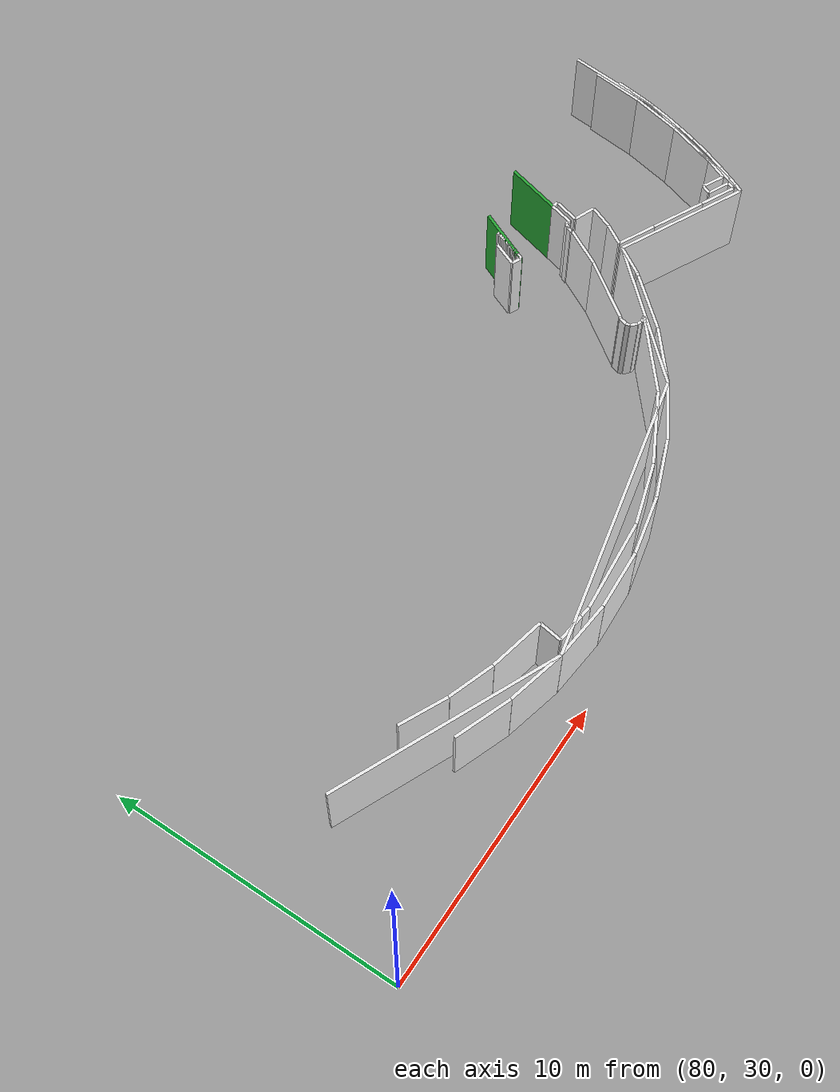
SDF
<sdf version="1.6">
 <world name="default">
  <model name="wall_101.2_40.3_1.5">
   <static>true</static>
   <pose>101.22500000003492 40.33999999985099 1.5 0 0 1.14888780329325</pose>
   <link name="link">
    <visual name="visual">
     <geometry><box><size>1.9291708061423898 0.1 3</size></box></geometry>
     <material>
      <script><uri>file://media/materials/scripts/gazebo.material</uri><name>Gazebo/Green</name></script>
     </material>
    </visual>
    <collision name="collision"><geometry><box><size>1.9291708061423898 0.1 3</size></box></geometry></collision>
   </link>
  </model>
  <model name="wall_103.3_40.6_1.5">
   <static>true</static>
   <pose>103.3299999999872 40.59000000008382 1.5 0 0 -1.823690391929414</pose>
   <link name="link">
    <visual name="visual">
     <geometry><box><size>1.8384776308918926 0.1 3</size></box></geometry>
     <material>
      <script><uri>file://media/materials/scripts/gazebo.material</uri><name>Gazebo/Green</name></script>
     </material>
    </visual>
    <collision name="collision"><geometry><box><size>1.8384776308918926 0.1 3</size></box></geometry></collision>
   </link>
  </model>
  <model name="wall_100.9_39.7_1.5">
   <static>true</static>
   <pose>100.88500000000931 39.670000000158325 1.5 0 0 1.1071487177940904</pose>
   <link name="link">
    <visual name="visual">
     <geometry><box><size>0.022360679795822902 0.1 3</size></box></geometry>
     <material>
      <script><uri>file://media/materials/scripts/gazebo.material</uri><name>Gazebo/White</name></script>
     </material>
    </visual>
    <collision name="collision">
     <geometry><box><size>0.022360679795822902 0.1 3</size></box></geometry>
    </collision>
   </link>
  </model>
  <model name="wall_100.9_39.8_1.5">
   <static>true</static>
   <pose>100.92999999999302 39.77999999979511 1.5 0 0 1.1071487177940904</pose>
   <link name="link">
    <visual name="visual">
     <geometry><box><size>0.044721359591645804 0.1 3</size></box></geometry>
     <material>
      <script><uri>file://media/materials/scripts/gazebo.material</uri><name>Gazebo/White</name></script>
     </material>
    </visual>
    <collision name="collision">
     <geometry><box><size>0.044721359591645804 0.1 3</size></box></geometry>
    </collision>
   </link>
  </model>
  <model name="wall_101.0_39.9_1.5">
   <static>true</static>
   <pose>100.96499999999651 39.86999999987893 1.5 0 0 1.1071487185701927</pose>
   <link name="link">
    <visual name="visual">
     <geometry><box><size>0.06708203936143745 0.1 3</size></box></geometry>
     <material>
      <script><uri>file://media/materials/scripts/gazebo.material</uri><name>Gazebo/White</name></script>
     </material>
    </visual>
    <collision name="collision"><geometry><box><size>0.06708203936143745 0.1 3</size></box></geometry></collision>
   </link>
  </model>
  <model name="wall_101.0_40.0_1.5">
   <static>true</static>
   <pose>101.00500000000466 39.96999999997206 1.5 0 0 1.1071487177940904</pose>
   <link name="link">
    <visual name="visual">
     <geometry><box><size>0.0670820393874687 0.1 3</size></box></geometry>
     <material>
      <script><uri>file://media/materials/scripts/gazebo.material</uri><name>Gazebo/White</name></script>
     </material>
    </visual>
    <collision name="collision"><geometry><box><size>0.0670820393874687 0.1 3</size></box></geometry></collision>
   </link>
  </model>
  <model name="wall_101.0_40.1_1.5">
   <static>true</static>
   <pose>101.04000000000815 40.06499999994412 1.5 0 0 0.9827937281725927</pose>
   <link name="link">
    <visual name="visual">
     <geometry><box><size>0.03605551294965821 0.1 3</size></box></geometry>
     <material>
      <script><uri>file://media/materials/scripts/gazebo.material</uri><name>Gazebo/White</name></script>
     </material>
    </visual>
    <collision name="collision"><geometry><box><size>0.03605551294965821 0.1 3</size></box></geometry></collision>
   </link>
  </model>
  <model name="wall_101.1_40.1_1.5">
   <static>true</static>
   <pose>101.05999999999767 40.10499999998137 1.5 0 0 1.1902899480768032</pose>
   <link name="link">
    <visual name="visual">
     <geometry><box><size>0.05385164790532047 0.1 3</size></box></geometry>
     <material>
      <script><uri>file://media/materials/scripts/gazebo.material</uri><name>Gazebo/White</name></script>
     </material>
    </visual>
    <collision name="collision"><geometry><box><size>0.05385164790532047 0.1 3</size></box></geometry></collision>
   </link>
  </model>
  <model name="wall_101.1_40.2_1.5">
   <static>true</static>
   <pose>101.0800000000163 40.16500000003725 1.5 0 0 1.2924966686683914</pose>
   <link name="link">
    <visual name="visual">
     <geometry><box><size>0.07280109918447873 0.1 3</size></box></geometry>
     <material>
      <script><uri>file://media/materials/scripts/gazebo.material</uri><name>Gazebo/White</name></script>
     </material>
    </visual>
    <collision name="collision"><geometry><box><size>0.07280109918447873 0.1 3</size></box></geometry></collision>
   </link>
  </model>
  <model name="wall_101.1_40.3_1.5">
   <static>true</static>
   <pose>101.13500000000931 40.31499999994412 1.5 0 0 1.1659045417141096</pose>
   <link name="link">
    <visual name="visual">
     <geometry><box><size>0.07615773134357162 0.1 3</size></box></geometry>
     <material>
      <script><uri>file://media/materials/scripts/gazebo.material</uri><name>Gazebo/White</name></script>
     </material>
    </visual>
    <collision name="collision"><geometry><box><size>0.07615773134357162 0.1 3</size></box></geometry></collision>
   </link>
  </model>
  <model name="wall_101.2_40.4_1.5">
   <static>true</static>
   <pose>101.16000000000349 40.390000000130385 1.5 0 0 1.3258176643528286</pose>
   <link name="link">
    <visual name="visual">
     <geometry><box><size>0.08246211257503461 0.1 3</size></box></geometry>
     <material>
      <script><uri>file://media/materials/scripts/gazebo.material</uri><name>Gazebo/White</name></script>
     </material>
    </visual>
    <collision name="collision"><geometry><box><size>0.08246211257503461 0.1 3</size></box></geometry></collision>
   </link>
  </model>
  <model name="wall_101.2_40.5_1.5">
   <static>true</static>
   <pose>101.18499999999767 40.46999999997206 1.5 0 0 1.2120256546106478</pose>
   <link name="link">
    <visual name="visual">
     <geometry><box><size>0.0854400370967353 0.1 3</size></box></geometry>
     <material>
      <script><uri>file://media/materials/scripts/gazebo.material</uri><name>Gazebo/White</name></script>
     </material>
    </visual>
    <collision name="collision"><geometry><box><size>0.0854400370967353 0.1 3</size></box></geometry></collision>
   </link>
  </model>
  <model name="wall_101.2_40.6_1.5">
   <static>true</static>
   <pose>101.22000000000116 40.59000000008382 1.5 0 0 1.2490457732713693</pose>
   <link name="link">
    <visual name="visual">
     <geometry><box><size>0.06324555324386272 0.1 3</size></box></geometry>
     <material>
      <script><uri>file://media/materials/scripts/gazebo.material</uri><name>Gazebo/White</name></script>
     </material>
    </visual>
    <collision name="collision"><geometry><box><size>0.06324555324386272 0.1 3</size></box></geometry></collision>
   </link>
  </model>
  <model name="wall_103.0_39.3_1.5">
   <static>true</static>
   <pose>103.0 39.31000000005588 1.5 0 0 -1.821799013301479</pose>
   <link name="link">
    <visual name="visual">
     <geometry><box><size>0.8052328858089288 0.1 3</size></box></geometry>
     <material>
      <script><uri>file://media/materials/scripts/gazebo.material</uri><name>Gazebo/White</name></script>
     </material>
    </visual>
    <collision name="collision"><geometry><box><size>0.8052328858089288 0.1 3</size></box></geometry></collision>
   </link>
  </model>
  <model name="wall_102.8_38.9_1.5">
   <static>true</static>
   <pose>102.8300000000163 38.949999999953434 1.5 0 0 2.736700867003636</pose>
   <link name="link">
    <visual name="visual">
     <geometry><box><size>0.15231546215213043 0.1 3</size></box></geometry>
     <material>
      <script><uri>file://media/materials/scripts/gazebo.material</uri><name>Gazebo/White</name></script>
     </material>
    </visual>
    <collision name="collision"><geometry><box><size>0.15231546215213043 0.1 3</size></box></geometry></collision>
   </link>
  </model>
  <model name="wall_102.7_38.9_1.5">
   <static>true</static>
   <pose>102.72500000000582 38.90999999991618 1.5 0 0 -2.0344439354630874</pose>
   <link name="link">
    <visual name="visual">
     <geometry><box><size>0.15652475854472905 0.1 3</size></box></geometry>
     <material>
      <script><uri>file://media/materials/scripts/gazebo.material</uri><name>Gazebo/White</name></script>
     </material>
    </visual>
    <collision name="collision"><geometry><box><size>0.15652475854472905 0.1 3</size></box></geometry></collision>
   </link>
  </model>
  <model name="wall_102.7_38.8_1.5">
   <static>true</static>
   <pose>102.67999999999302 38.84499999997206 1.5 0 0 2.677945035275761</pose>
   <link name="link">
    <visual name="visual">
     <geometry><box><size>0.022360679899947934 0.1 3</size></box></geometry>
     <material>
      <script><uri>file://media/materials/scripts/gazebo.material</uri><name>Gazebo/White</name></script>
     </material>
    </visual>
    <collision name="collision">
     <geometry><box><size>0.022360679899947934 0.1 3</size></box></geometry>
    </collision>
   </link>
  </model>
  <model name="wall_102.6_38.8_1.5">
   <static>true</static>
   <pose>102.63000000000466 38.76000000000931 1.5 0 0 -1.9890206558340546</pose>
   <link name="link">
    <visual name="visual">
     <geometry><box><size>0.19697715617209063 0.1 3</size></box></geometry>
     <material>
      <script><uri>file://media/materials/scripts/gazebo.material</uri><name>Gazebo/White</name></script>
     </material>
    </visual>
    <collision name="collision"><geometry><box><size>0.19697715617209063 0.1 3</size></box></geometry></collision>
   </link>
  </model>
  <model name="wall_100.9_39.6_1.5">
   <static>true</static>
   <pose>100.86999999999534 39.550000000046566 1.5 0 0 1.1525719977557387</pose>
   <link name="link">
    <visual name="visual">
     <geometry><box><size>0.19697715617209063 0.1 3</size></box></geometry>
     <material>
      <script><uri>file://media/materials/scripts/gazebo.material</uri><name>Gazebo/White</name></script>
     </material>
    </visual>
    <collision name="collision"><geometry><box><size>0.19697715617209063 0.1 3</size></box></geometry></collision>
   </link>
  </model>
  <model name="wall_100.7_40.0_1.5">
   <static>true</static>
   <pose>100.68000000002212 39.98999999999069 1.5 0 0 -1.9693187723551735</pose>
   <link name="link">
    <visual name="visual">
     <geometry><box><size>0.824621125349411 0.1 3</size></box></geometry>
     <material>
      <script><uri>file://media/materials/scripts/gazebo.material</uri><name>Gazebo/White</name></script>
     </material>
    </visual>
    <collision name="collision"><geometry><box><size>0.824621125349411 0.1 3</size></box></geometry></collision>
   </link>
  </model>
  <model name="wall_100.7_39.5_1.5">
   <static>true</static>
   <pose>100.67500000001746 39.53499999991618 1.5 0 0 -0.4506613258401467</pose>
   <link name="link">
    <visual name="visual">
     <geometry><box><size>0.34438350711179067 0.1 3</size></box></geometry>
     <material>
      <script><uri>file://media/materials/scripts/gazebo.material</uri><name>Gazebo/White</name></script>
     </material>
    </visual>
    <collision name="collision"><geometry><box><size>0.34438350711179067 0.1 3</size></box></geometry></collision>
   </link>
  </model>
  <model name="wall_102.6_38.7_1.5">
   <static>true</static>
   <pose>102.60500000001048 38.65999999991618 1.5 0 0 -0.5880026044430701</pose>
   <link name="link">
    <visual name="visual">
     <geometry><box><size>0.03605551273978751 0.1 3</size></box></geometry>
     <material>
      <script><uri>file://media/materials/scripts/gazebo.material</uri><name>Gazebo/White</name></script>
     </material>
    </visual>
    <collision name="collision"><geometry><box><size>0.03605551273978751 0.1 3</size></box></geometry></collision>
   </link>
  </model>
  <model name="wall_102.3_38.1_1.5">
   <static>true</static>
   <pose>102.30499999999302 38.05499999993481 1.5 0 0 -2.0576955586286396</pose>
   <link name="link">
    <visual name="visual">
     <geometry><box><size>1.3464768842697874 0.1 3</size></box></geometry>
     <material>
      <script><uri>file://media/materials/scripts/gazebo.material</uri><name>Gazebo/White</name></script>
     </material>
    </visual>
    <collision name="collision"><geometry><box><size>1.3464768842697874 0.1 3</size></box></geometry></collision>
   </link>
  </model>
  <model name="wall_101.4_36.6_1.5">
   <static>true</static>
   <pose>101.36499999999069 36.574999999953434 1.5 0 0 -2.1856810573733596</pose>
   <link name="link">
    <visual name="visual">
     <geometry><box><size>2.166887168282174 0.1 3</size></box></geometry>
     <material>
      <script><uri>file://media/materials/scripts/gazebo.material</uri><name>Gazebo/White</name></script>
     </material>
    </visual>
    <collision name="collision"><geometry><box><size>2.166887168282174 0.1 3</size></box></geometry></collision>
   </link>
  </model>
  <model name="wall_100.7_35.7_1.5">
   <static>true</static>
   <pose>100.71499999999651 35.66500000003725 1.5 0 0 -2.3561944919385747</pose>
   <link name="link">
    <visual name="visual">
     <geometry><box><size>0.07071067797871404 0.1 3</size></box></geometry>
     <material>
      <script><uri>file://media/materials/scripts/gazebo.material</uri><name>Gazebo/White</name></script>
     </material>
    </visual>
    <collision name="collision"><geometry><box><size>0.07071067797871404 0.1 3</size></box></geometry></collision>
   </link>
  </model>
  <model name="wall_100.7_35.5_1.5">
   <static>true</static>
   <pose>100.65499999999884 35.52000000001863 1.5 0 0 -1.854590435779707</pose>
   <link name="link">
    <visual name="visual">
     <geometry><box><size>0.25000000021653246 0.1 3</size></box></geometry>
     <material>
      <script><uri>file://media/materials/scripts/gazebo.material</uri><name>Gazebo/White</name></script>
     </material>
    </visual>
    <collision name="collision"><geometry><box><size>0.25000000021653246 0.1 3</size></box></geometry></collision>
   </link>
  </model>
  <model name="wall_100.6_35.3_1.5">
   <static>true</static>
   <pose>100.63500000000931 35.33499999996275 1.5 0 0 -1.3439974783485995</pose>
   <link name="link">
    <visual name="visual">
     <geometry><box><size>0.13341664053864913 0.1 3</size></box></geometry>
     <material>
      <script><uri>file://media/materials/scripts/gazebo.material</uri><name>Gazebo/White</name></script>
     </material>
    </visual>
    <collision name="collision"><geometry><box><size>0.13341664053864913 0.1 3</size></box></geometry></collision>
   </link>
  </model>
  <model name="wall_100.7_35.2_1.5">
   <static>true</static>
   <pose>100.73500000001513 35.17999999993481 1.5 0 0 -0.8139618217489675</pose>
   <link name="link">
    <visual name="visual">
     <geometry><box><size>0.24758836817348331 0.1 3</size></box></geometry>
     <material>
      <script><uri>file://media/materials/scripts/gazebo.material</uri><name>Gazebo/White</name></script>
     </material>
    </visual>
    <collision name="collision"><geometry><box><size>0.24758836817348331 0.1 3</size></box></geometry></collision>
   </link>
  </model>
  <model name="wall_100.9_35.1_1.5">
   <static>true</static>
   <pose>100.88500000000931 35.06499999994412 1.5 0 0 -0.36717383255805336</pose>
   <link name="link">
    <visual name="visual">
     <geometry><box><size>0.13928388270932235 0.1 3</size></box></geometry>
     <material>
      <script><uri>file://media/materials/scripts/gazebo.material</uri><name>Gazebo/White</name></script>
     </material>
    </visual>
    <collision name="collision"><geometry><box><size>0.13928388270932235 0.1 3</size></box></geometry></collision>
   </link>
  </model>
  <model name="wall_101.0_35.0_1.5">
   <static>true</static>
   <pose>101.00500000000466 35.04000000003725 1.5 0 0 0.0</pose>
   <link name="link">
    <visual name="visual">
     <geometry><box><size>0.10999999998603016 0.1 3</size></box></geometry>
     <material>
      <script><uri>file://media/materials/scripts/gazebo.material</uri><name>Gazebo/White</name></script>
     </material>
    </visual>
    <collision name="collision"><geometry><box><size>0.10999999998603016 0.1 3</size></box></geometry></collision>
   </link>
  </model>
  <model name="wall_101.1_35.1_1.5">
   <static>true</static>
   <pose>101.11499999999069 35.05499999993481 1.5 0 0 0.2662520474494707</pose>
   <link name="link">
    <visual name="visual">
     <geometry><box><size>0.11401754244252582 0.1 3</size></box></geometry>
     <material>
      <script><uri>file://media/materials/scripts/gazebo.material</uri><name>Gazebo/White</name></script>
     </material>
    </visual>
    <collision name="collision"><geometry><box><size>0.11401754244252582 0.1 3</size></box></geometry></collision>
   </link>
  </model>
  <model name="wall_100.1_34.2_1.5">
   <static>true</static>
   <pose>100.125 34.17999999993481 1.5 0 0 -2.4361271769906225</pose>
   <link name="link">
    <visual name="visual">
     <geometry><box><size>2.7452686570050546 0.1 3</size></box></geometry>
     <material>
      <script><uri>file://media/materials/scripts/gazebo.material</uri><name>Gazebo/White</name></script>
     </material>
    </visual>
    <collision name="collision"><geometry><box><size>2.7452686570050546 0.1 3</size></box></geometry></collision>
   </link>
  </model>
  <model name="wall_98.0_32.7_1.5">
   <static>true</static>
   <pose>97.96499999999651 32.699999999953434 1.5 0 0 -2.654899479832602</pose>
   <link name="link">
    <visual name="visual">
     <geometry><box><size>2.522954617224051 0.1 3</size></box></geometry>
     <material>
      <script><uri>file://media/materials/scripts/gazebo.material</uri><name>Gazebo/White</name></script>
     </material>
    </visual>
    <collision name="collision"><geometry><box><size>2.522954617224051 0.1 3</size></box></geometry></collision>
   </link>
  </model>
  <model name="wall_95.8_31.8_1.5">
   <static>true</static>
   <pose>95.83499999999185 31.794999999925494 1.5 0 0 -2.8406724192753643</pose>
   <link name="link">
    <visual name="visual">
     <geometry><box><size>2.125511703034424 0.1 3</size></box></geometry>
     <material>
      <script><uri>file://media/materials/scripts/gazebo.material</uri><name>Gazebo/White</name></script>
     </material>
    </visual>
    <collision name="collision"><geometry><box><size>2.125511703034424 0.1 3</size></box></geometry></collision>
   </link>
  </model>
  <model name="wall_93.3_31.3_1.5">
   <static>true</static>
   <pose>93.27499999999418 31.34499999997206 1.5 0 0 -3.0544353790302465</pose>
   <link name="link">
    <visual name="visual">
     <geometry><box><size>3.101773686162215 0.1 3</size></box></geometry>
     <material>
      <script><uri>file://media/materials/scripts/gazebo.material</uri><name>Gazebo/White</name></script>
     </material>
    </visual>
    <collision name="collision"><geometry><box><size>3.101773686162215 0.1 3</size></box></geometry></collision>
   </link>
  </model>
  <model name="wall_91.5_31.2_1.5">
   <static>true</static>
   <pose>91.5449999999837 31.229999999981374 1.5 0 0 3.0339027826561074</pose>
   <link name="link">
    <visual name="visual">
     <geometry><box><size>0.3721558813179423 0.1 3</size></box></geometry>
     <material>
      <script><uri>file://media/materials/scripts/gazebo.material</uri><name>Gazebo/White</name></script>
     </material>
    </visual>
    <collision name="collision"><geometry><box><size>0.3721558813179423 0.1 3</size></box></geometry></collision>
   </link>
  </model>
  <model name="wall_90.9_31.3_1.5">
   <static>true</static>
   <pose>90.86999999999534 31.300000000046566 1.5 0 0 3.039903801730743</pose>
   <link name="link">
    <visual name="visual">
     <geometry><box><size>0.985088828472904 0.1 3</size></box></geometry>
     <material>
      <script><uri>file://media/materials/scripts/gazebo.material</uri><name>Gazebo/White</name></script>
     </material>
    </visual>
    <collision name="collision"><geometry><box><size>0.985088828472904 0.1 3</size></box></geometry></collision>
   </link>
  </model>
  <model name="wall_90.4_31.7_1.5">
   <static>true</static>
   <pose>90.44000000000233 31.739999999990687 1.5 0 0 1.4181469983659853</pose>
   <link name="link">
    <visual name="visual">
     <geometry><box><size>0.7891767860747378 0.1 3</size></box></geometry>
     <material>
      <script><uri>file://media/materials/scripts/gazebo.material</uri><name>Gazebo/White</name></script>
     </material>
    </visual>
    <collision name="collision"><geometry><box><size>0.7891767860747378 0.1 3</size></box></geometry></collision>
   </link>
  </model>
  <model name="wall_89.6_32.3_1.5">
   <static>true</static>
   <pose>89.56500000000233 32.33499999996275 1.5 0 0 2.9257565612511374</pose>
   <link name="link">
    <visual name="visual">
     <geometry><box><size>1.914418971935029 0.1 3</size></box></geometry>
     <material>
      <script><uri>file://media/materials/scripts/gazebo.material</uri><name>Gazebo/White</name></script>
     </material>
    </visual>
    <collision name="collision"><geometry><box><size>1.914418971935029 0.1 3</size></box></geometry></collision>
   </link>
  </model>
  <model name="wall_87.9_32.8_1.5">
   <static>true</static>
   <pose>87.86499999999069 32.80499999993481 1.5 0 0 2.8081238857159727</pose>
   <link name="link">
    <visual name="visual">
     <geometry><box><size>1.6191973319729474 0.1 3</size></box></geometry>
     <material>
      <script><uri>file://media/materials/scripts/gazebo.material</uri><name>Gazebo/White</name></script>
     </material>
    </visual>
    <collision name="collision"><geometry><box><size>1.6191973319729474 0.1 3</size></box></geometry></collision>
   </link>
  </model>
  <model name="wall_86.3_33.4_1.5">
   <static>true</static>
   <pose>86.3299999999872 33.43499999982305 1.5 0 0 2.6989393348950688</pose>
   <link name="link">
    <visual name="visual">
     <geometry><box><size>1.704259369904788 0.1 3</size></box></geometry>
     <material>
      <script><uri>file://media/materials/scripts/gazebo.material</uri><name>Gazebo/White</name></script>
     </material>
    </visual>
    <collision name="collision"><geometry><box><size>1.704259369904788 0.1 3</size></box></geometry></collision>
   </link>
  </model>
  <model name="wall_108.4_40.5_1.5">
   <static>true</static>
   <pose>108.39999999999418 40.48999999999069 1.5 0 0 -1.6657480331131271</pose>
   <link name="link">
    <visual name="visual">
     <geometry><box><size>1.6876018489427735 0.1 3</size></box></geometry>
     <material>
      <script><uri>file://media/materials/scripts/gazebo.material</uri><name>Gazebo/White</name></script>
     </material>
    </visual>
    <collision name="collision"><geometry><box><size>1.6876018489427735 0.1 3</size></box></geometry></collision>
   </link>
  </model>
  <model name="wall_108.2_38.8_1.5">
   <static>true</static>
   <pose>108.15499999999884 38.829999999841675 1.5 0 0 -1.7693642190444387</pose>
   <link name="link">
    <visual name="visual">
     <geometry><box><size>1.672871782426382 0.1 3</size></box></geometry>
     <material>
      <script><uri>file://media/materials/scripts/gazebo.material</uri><name>Gazebo/White</name></script>
     </material>
    </visual>
    <collision name="collision"><geometry><box><size>1.672871782426382 0.1 3</size></box></geometry></collision>
   </link>
  </model>
  <model name="wall_107.7_37.2_1.5">
   <static>true</static>
   <pose>107.74499999999534 37.204999999841675 1.5 0 0 -1.8662371639558804</pose>
   <link name="link">
    <visual name="visual">
     <geometry><box><size>1.6829141390965354 0.1 3</size></box></geometry>
     <material>
      <script><uri>file://media/materials/scripts/gazebo.material</uri><name>Gazebo/White</name></script>
     </material>
    </visual>
    <collision name="collision"><geometry><box><size>1.6829141390965354 0.1 3</size></box></geometry></collision>
   </link>
  </model>
  <model name="wall_107.4_36.1_1.5">
   <static>true</static>
   <pose>107.35000000000582 36.05499999993481 1.5 0 0 -1.980923667351811</pose>
   <link name="link">
    <visual name="visual">
     <geometry><box><size>0.7523961721831801 0.1 3</size></box></geometry>
     <material>
      <script><uri>file://media/materials/scripts/gazebo.material</uri><name>Gazebo/White</name></script>
     </material>
    </visual>
    <collision name="collision"><geometry><box><size>0.7523961721831801 0.1 3</size></box></geometry></collision>
   </link>
  </model>
  <model name="wall_106.9_35.9_1.5">
   <static>true</static>
   <pose>106.86000000001513 35.87999999988824 1.5 0 0 2.677945044760186</pose>
   <link name="link">
    <visual name="visual">
     <geometry><box><size>0.760263112277041 0.1 3</size></box></geometry>
     <material>
      <script><uri>file://media/materials/scripts/gazebo.material</uri><name>Gazebo/White</name></script>
     </material>
    </visual>
    <collision name="collision"><geometry><box><size>0.760263112277041 0.1 3</size></box></geometry></collision>
   </link>
  </model>
  <model name="wall_106.5_35.9_1.5">
   <static>true</static>
   <pose>106.46000000002095 35.90999999991618 1.5 0 0 -1.9756881133308752</pose>
   <link name="link">
    <visual name="visual">
     <geometry><box><size>0.3046309240443975 0.1 3</size></box></geometry>
     <material>
      <script><uri>file://media/materials/scripts/gazebo.material</uri><name>Gazebo/White</name></script>
     </material>
    </visual>
    <collision name="collision"><geometry><box><size>0.3046309240443975 0.1 3</size></box></geometry></collision>
   </link>
  </model>
  <model name="wall_106.7_35.6_1.5">
   <static>true</static>
   <pose>106.74500000002445 35.60000000009313 1.5 0 0 -0.4578337208438593</pose>
   <link name="link">
    <visual name="visual">
     <geometry><box><size>0.769220384481512 0.1 3</size></box></geometry>
     <material>
      <script><uri>file://media/materials/scripts/gazebo.material</uri><name>Gazebo/White</name></script>
     </material>
    </visual>
    <collision name="collision"><geometry><box><size>0.769220384481512 0.1 3</size></box></geometry></collision>
   </link>
  </model>
  <model name="wall_107.0_35.3_1.5">
   <static>true</static>
   <pose>107.04000000000815 35.31500000017695 1.5 0 0 -1.9809236674937056</pose>
   <link name="link">
    <visual name="visual">
     <geometry><box><size>0.25079872407653264 0.1 3</size></box></geometry>
     <material>
      <script><uri>file://media/materials/scripts/gazebo.material</uri><name>Gazebo/White</name></script>
     </material>
    </visual>
    <collision name="collision"><geometry><box><size>0.25079872407653264 0.1 3</size></box></geometry></collision>
   </link>
  </model>
  <model name="wall_106.4_35.5_1.5">
   <static>true</static>
   <pose>106.44999999998254 35.47000000020489 1.5 0 0 2.6779450445674287</pose>
   <link name="link">
    <visual name="visual">
     <geometry><box><size>1.207476707881124 0.1 3</size></box></geometry>
     <material>
      <script><uri>file://media/materials/scripts/gazebo.material</uri><name>Gazebo/White</name></script>
     </material>
    </visual>
    <collision name="collision"><geometry><box><size>1.207476707881124 0.1 3</size></box></geometry></collision>
   </link>
  </model>
  <model name="wall_105.1_36.2_1.5">
   <static>true</static>
   <pose>105.08499999999185 36.15500000002794 1.5 0 0 2.675523741995435</pose>
   <link name="link">
    <visual name="visual">
     <geometry><box><size>1.8469975634080924 0.1 3</size></box></geometry>
     <material>
      <script><uri>file://media/materials/scripts/gazebo.material</uri><name>Gazebo/White</name></script>
     </material>
    </visual>
    <collision name="collision"><geometry><box><size>1.8469975634080924 0.1 3</size></box></geometry></collision>
   </link>
  </model>
  <model name="wall_103.7_36.9_1.5">
   <static>true</static>
   <pose>103.6700000000128 36.86499999999069 1.5 0 0 2.6779450443719415</pose>
   <link name="link">
    <visual name="visual">
     <geometry><box><size>1.3192801068602384 0.1 3</size></box></geometry>
     <material>
      <script><uri>file://media/materials/scripts/gazebo.material</uri><name>Gazebo/White</name></script>
     </material>
    </visual>
    <collision name="collision"><geometry><box><size>1.3192801068602384 0.1 3</size></box></geometry></collision>
   </link>
  </model>
  <model name="wall_103.3_37.5_1.5">
   <static>true</static>
   <pose>103.27499999999418 37.485000000102445 1.5 0 0 1.0303768265111433</pose>
   <link name="link">
    <visual name="visual">
     <geometry><box><size>0.7580237462272686 0.1 3</size></box></geometry>
     <material>
      <script><uri>file://media/materials/scripts/gazebo.material</uri><name>Gazebo/White</name></script>
     </material>
    </visual>
    <collision name="collision"><geometry><box><size>0.7580237462272686 0.1 3</size></box></geometry></collision>
   </link>
  </model>
  <model name="wall_103.6_38.2_1.5">
   <static>true</static>
   <pose>103.61999999999534 38.18500000005588 1.5 0 0 1.1902899496290074</pose>
   <link name="link">
    <visual name="visual">
     <geometry><box><size>0.8077747210874698 0.1 3</size></box></geometry>
     <material>
      <script><uri>file://media/materials/scripts/gazebo.material</uri><name>Gazebo/White</name></script>
     </material>
    </visual>
    <collision name="collision"><geometry><box><size>0.8077747210874698 0.1 3</size></box></geometry></collision>
   </link>
  </model>
  <model name="wall_103.4_38.7_1.5">
   <static>true</static>
   <pose>103.43000000002212 38.699999999953434 1.5 0 0 2.750985610146119</pose>
   <link name="link">
    <visual name="visual">
     <geometry><box><size>0.7353910523495384 0.1 3</size></box></geometry>
     <material>
      <script><uri>file://media/materials/scripts/gazebo.material</uri><name>Gazebo/White</name></script>
     </material>
    </visual>
    <collision name="collision"><geometry><box><size>0.7353910523495384 0.1 3</size></box></geometry></collision>
   </link>
  </model>
  <model name="wall_103.2_39.2_1.5">
   <static>true</static>
   <pose>103.19500000000698 39.24499999987893 1.5 0 0 1.3171222307161075</pose>
   <link name="link">
    <visual name="visual">
     <geometry><box><size>0.8367795409036232 0.1 3</size></box></geometry>
     <material>
      <script><uri>file://media/materials/scripts/gazebo.material</uri><name>Gazebo/White</name></script>
     </material>
    </visual>
    <collision name="collision"><geometry><box><size>0.8367795409036232 0.1 3</size></box></geometry></collision>
   </link>
  </model>
  <model name="wall_103.2_39.7_1.5">
   <static>true</static>
   <pose>103.19999999998254 39.675000000046566 1.5 0 0 2.896613989161817</pose>
   <link name="link">
    <visual name="visual">
     <geometry><box><size>0.20615528135994066 0.1 3</size></box></geometry>
     <material>
      <script><uri>file://media/materials/scripts/gazebo.material</uri><name>Gazebo/White</name></script>
     </material>
    </visual>
    <collision name="collision"><geometry><box><size>0.20615528135994066 0.1 3</size></box></geometry></collision>
   </link>
  </model>
  <model name="wall_87.1_31.9_1.5">
   <static>true</static>
   <pose>87.11499999999069 31.899999999906868 1.5 0 0 -0.3581845039546106</pose>
   <link name="link">
    <visual name="visual">
     <geometry><box><size>1.9967223142548778 0.1 3</size></box></geometry>
     <material>
      <script><uri>file://media/materials/scripts/gazebo.material</uri><name>Gazebo/White</name></script>
     </material>
    </visual>
    <collision name="collision"><geometry><box><size>1.9967223142548778 0.1 3</size></box></geometry></collision>
   </link>
  </model>
  <model name="wall_89.0_31.3_1.5">
   <static>true</static>
   <pose>89.02499999999418 31.31499999994412 1.5 0 0 -0.23651453623268864</pose>
   <link name="link">
    <visual name="visual">
     <geometry><box><size>2.0058414692592925 0.1 3</size></box></geometry>
     <material>
      <script><uri>file://media/materials/scripts/gazebo.material</uri><name>Gazebo/White</name></script>
     </material>
    </visual>
    <collision name="collision"><geometry><box><size>2.0058414692592925 0.1 3</size></box></geometry></collision>
   </link>
  </model>
  <model name="wall_91.0_31.0_1.5">
   <static>true</static>
   <pose>90.99499999999534 30.985000000102445 1.5 0 0 -0.09518884171524361</pose>
   <link name="link">
    <visual name="visual">
     <geometry><box><size>1.9990497742531823 0.1 3</size></box></geometry>
     <material>
      <script><uri>file://media/materials/scripts/gazebo.material</uri><name>Gazebo/White</name></script>
     </material>
    </visual>
    <collision name="collision"><geometry><box><size>1.9990497742531823 0.1 3</size></box></geometry></collision>
   </link>
  </model>
  <model name="wall_93.0_30.9_1.5">
   <static>true</static>
   <pose>92.98499999998603 30.945000000065193 1.5 0 0 0.05522018623431974</pose>
   <link name="link">
    <visual name="visual">
     <geometry><box><size>1.9930378822125405 0.1 3</size></box></geometry>
     <material>
      <script><uri>file://media/materials/scripts/gazebo.material</uri><name>Gazebo/White</name></script>
     </material>
    </visual>
    <collision name="collision"><geometry><box><size>1.9930378822125405 0.1 3</size></box></geometry></collision>
   </link>
  </model>
  <model name="wall_95.0_31.2_1.5">
   <static>true</static>
   <pose>94.95999999999185 31.21999999997206 1.5 0 0 0.2208287696999214</pose>
   <link name="link">
    <visual name="visual">
     <geometry><box><size>2.008780724726561 0.1 3</size></box></geometry>
     <material>
      <script><uri>file://media/materials/scripts/gazebo.material</uri><name>Gazebo/White</name></script>
     </material>
    </visual>
    <collision name="collision"><geometry><box><size>2.008780724726561 0.1 3</size></box></geometry></collision>
   </link>
  </model>
  <model name="wall_96.9_31.8_1.5">
   <static>true</static>
   <pose>96.86999999999534 31.81000000005588 1.5 0 0 0.378651091777806</pose>
   <link name="link">
    <visual name="visual">
     <geometry><box><size>2.001799190797828 0.1 3</size></box></geometry>
     <material>
      <script><uri>file://media/materials/scripts/gazebo.material</uri><name>Gazebo/White</name></script>
     </material>
    </visual>
    <collision name="collision"><geometry><box><size>2.001799190797828 0.1 3</size></box></geometry></collision>
   </link>
  </model>
  <model name="wall_98.7_32.7_1.5">
   <static>true</static>
   <pose>98.66000000000349 32.69000000017695 1.5 0 0 0.5352737480904504</pose>
   <link name="link">
    <visual name="visual">
     <geometry><box><size>1.9996999775321596 0.1 3</size></box></geometry>
     <material>
      <script><uri>file://media/materials/scripts/gazebo.material</uri><name>Gazebo/White</name></script>
     </material>
    </visual>
    <collision name="collision"><geometry><box><size>1.9996999775321596 0.1 3</size></box></geometry></collision>
   </link>
  </model>
  <model name="wall_100.3_33.8_1.5">
   <static>true</static>
   <pose>100.28500000000349 33.84500000020489 1.5 0 0 0.7004963699717071</pose>
   <link name="link">
    <visual name="visual">
     <geometry><box><size>2.0012496096198227 0.1 3</size></box></geometry>
     <material>
      <script><uri>file://media/materials/scripts/gazebo.material</uri><name>Gazebo/White</name></script>
     </material>
    </visual>
    <collision name="collision"><geometry><box><size>2.0012496096198227 0.1 3</size></box></geometry></collision>
   </link>
  </model>
  <model name="wall_101.7_35.2_1.5">
   <static>true</static>
   <pose>101.7049999999872 35.24500000011176 1.5 0 0 0.8562015958949653</pose>
   <link name="link">
    <visual name="visual">
     <geometry><box><size>1.999049774097403 0.1 3</size></box></geometry>
     <material>
      <script><uri>file://media/materials/scripts/gazebo.material</uri><name>Gazebo/White</name></script>
     </material>
    </visual>
    <collision name="collision"><geometry><box><size>1.999049774097403 0.1 3</size></box></geometry></collision>
   </link>
  </model>
  <model name="wall_102.4_36.1_1.5">
   <static>true</static>
   <pose>102.39999999999418 36.050000000046566 1.5 0 0 0.8960553849262687</pose>
   <link name="link">
    <visual name="visual">
     <geometry><box><size>0.1280624848315624 0.1 3</size></box></geometry>
     <material>
      <script><uri>file://media/materials/scripts/gazebo.material</uri><name>Gazebo/White</name></script>
     </material>
    </visual>
    <collision name="collision"><geometry><box><size>0.1280624848315624 0.1 3</size></box></geometry></collision>
   </link>
  </model>
  <model name="wall_102.7_36.5_1.5">
   <static>true</static>
   <pose>102.70999999999185 36.545000000158325 1.5 0 0 1.0254345274736425</pose>
   <link name="link">
    <visual name="visual">
     <geometry><box><size>1.0410091259011396 0.1 3</size></box></geometry>
     <material>
      <script><uri>file://media/materials/scripts/gazebo.material</uri><name>Gazebo/White</name></script>
     </material>
    </visual>
    <collision name="collision"><geometry><box><size>1.0410091259011396 0.1 3</size></box></geometry></collision>
   </link>
  </model>
  <model name="wall_105.0_36.0_1.5">
   <static>true</static>
   <pose>105.00999999998021 35.97000000020489 1.5 0 0 -0.46561611040271994</pose>
   <link name="link">
    <visual name="visual">
     <geometry><box><size>4.543698933702924 0.1 3</size></box></geometry>
     <material>
      <script><uri>file://media/materials/scripts/gazebo.material</uri><name>Gazebo/White</name></script>
     </material>
    </visual>
    <collision name="collision"><geometry><box><size>4.543698933702924 0.1 3</size></box></geometry></collision>
   </link>
  </model>
  <model name="wall_107.1_35.1_1.5">
   <static>true</static>
   <pose>107.09999999997672 35.075000000186265 1.5 0 0 1.1232763516528652</pose>
   <link name="link">
    <visual name="visual">
     <geometry><box><size>0.2773084924752259 0.1 3</size></box></geometry>
     <material>
      <script><uri>file://media/materials/scripts/gazebo.material</uri><name>Gazebo/White</name></script>
     </material>
    </visual>
    <collision name="collision"><geometry><box><size>0.2773084924752259 0.1 3</size></box></geometry></collision>
   </link>
  </model>
  <model name="wall_107.3_35.6_1.5">
   <static>true</static>
   <pose>107.31999999997788 35.580000000074506 1.5 0 0 1.1722738810154851</pose>
   <link name="link">
    <visual name="visual">
     <geometry><box><size>0.8246211249202411 0.1 3</size></box></geometry>
     <material>
      <script><uri>file://media/materials/scripts/gazebo.material</uri><name>Gazebo/White</name></script>
     </material>
    </visual>
    <collision name="collision"><geometry><box><size>0.8246211249202411 0.1 3</size></box></geometry></collision>
   </link>
  </model>
  <model name="wall_107.6_36.3_1.5">
   <static>true</static>
   <pose>107.60999999998603 36.30499999993481 1.5 0 0 1.2104383562315624</pose>
   <link name="link">
    <visual name="visual">
     <geometry><box><size>0.7373601561840247 0.1 3</size></box></geometry>
     <material>
      <script><uri>file://media/materials/scripts/gazebo.material</uri><name>Gazebo/White</name></script>
     </material>
    </visual>
    <collision name="collision"><geometry><box><size>0.7373601561840247 0.1 3</size></box></geometry></collision>
   </link>
  </model>
  <model name="wall_107.8_37.0_1.5">
   <static>true</static>
   <pose>107.84500000000116 36.96999999997206 1.5 0 0 1.2537405736165406</pose>
   <link name="link">
    <visual name="visual">
     <geometry><box><size>0.6735725648923759 0.1 3</size></box></geometry>
     <material>
      <script><uri>file://media/materials/scripts/gazebo.material</uri><name>Gazebo/White</name></script>
     </material>
    </visual>
    <collision name="collision"><geometry><box><size>0.6735725648923759 0.1 3</size></box></geometry></collision>
   </link>
  </model>
  <model name="wall_108.0_37.6_1.5">
   <static>true</static>
   <pose>108.02999999999884 37.58499999996275 1.5 0 0 1.3059789968657436</pose>
   <link name="link">
    <visual name="visual">
     <geometry><box><size>0.6113100684725965 0.1 3</size></box></geometry>
     <material>
      <script><uri>file://media/materials/scripts/gazebo.material</uri><name>Gazebo/White</name></script>
     </material>
    </visual>
    <collision name="collision"><geometry><box><size>0.6113100684725965 0.1 3</size></box></geometry></collision>
   </link>
  </model>
  <model name="wall_108.2_38.2_1.5">
   <static>true</static>
   <pose>108.18499999999767 38.175000000046566 1.5 0 0 1.3218336210932762</pose>
   <link name="link">
    <visual name="visual">
     <geometry><box><size>0.6087692505216008 0.1 3</size></box></geometry>
     <material>
      <script><uri>file://media/materials/scripts/gazebo.material</uri><name>Gazebo/White</name></script>
     </material>
    </visual>
    <collision name="collision"><geometry><box><size>0.6087692505216008 0.1 3</size></box></geometry></collision>
   </link>
  </model>
  <model name="wall_108.3_38.8_1.5">
   <static>true</static>
   <pose>108.32000000000698 38.7750000001397 1.5 0 0 1.3765553305803602</pose>
   <link name="link">
    <visual name="visual">
     <geometry><box><size>0.6216912415659501 0.1 3</size></box></geometry>
     <material>
      <script><uri>file://media/materials/scripts/gazebo.material</uri><name>Gazebo/White</name></script>
     </material>
    </visual>
    <collision name="collision"><geometry><box><size>0.6216912415659501 0.1 3</size></box></geometry></collision>
   </link>
  </model>
  <model name="wall_108.4_39.4_1.5">
   <static>true</static>
   <pose>108.42499999998836 39.35000000009313 1.5 0 0 1.4056476494501888</pose>
   <link name="link">
    <visual name="visual">
     <geometry><box><size>0.547448627758227 0.1 3</size></box></geometry>
     <material>
      <script><uri>file://media/materials/scripts/gazebo.material</uri><name>Gazebo/White</name></script>
     </material>
    </visual>
    <collision name="collision"><geometry><box><size>0.547448627758227 0.1 3</size></box></geometry></collision>
   </link>
  </model>
  <model name="wall_108.5_39.8_1.5">
   <static>true</static>
   <pose>108.48999999999069 39.795000000158325 1.5 0 0 1.4570043195761424</pose>
   <link name="link">
    <visual name="visual">
     <geometry><box><size>0.35227829917293063 0.1 3</size></box></geometry>
     <material>
      <script><uri>file://media/materials/scripts/gazebo.material</uri><name>Gazebo/White</name></script>
     </material>
    </visual>
    <collision name="collision"><geometry><box><size>0.35227829917293063 0.1 3</size></box></geometry></collision>
   </link>
  </model>
  <model name="wall_108.5_40.2_1.5">
   <static>true</static>
   <pose>108.54000000000815 40.23999999999069 1.5 0 0 1.4601391055381852</pose>
   <link name="link">
    <visual name="visual">
     <geometry><box><size>0.5433231078621997 0.1 3</size></box></geometry>
     <material>
      <script><uri>file://media/materials/scripts/gazebo.material</uri><name>Gazebo/White</name></script>
     </material>
    </visual>
    <collision name="collision"><geometry><box><size>0.5433231078621997 0.1 3</size></box></geometry></collision>
   </link>
  </model>
  <model name="wall_108.5_40.7_1.5">
   <static>true</static>
   <pose>108.50500000000466 40.6500000001397 1.5 0 0 -1.6502465656866598</pose>
   <link name="link">
    <visual name="visual">
     <geometry><box><size>3.149936507426589 0.1 3</size></box></geometry>
     <material>
      <script><uri>file://media/materials/scripts/gazebo.material</uri><name>Gazebo/White</name></script>
     </material>
    </visual>
    <collision name="collision"><geometry><box><size>3.149936507426589 0.1 3</size></box></geometry></collision>
   </link>
  </model>
  <model name="wall_107.7_37.0_1.5">
   <static>true</static>
   <pose>107.70999999999185 37.015000000130385 1.5 0 0 -1.8845353992981464</pose>
   <link name="link">
    <visual name="visual">
     <geometry><box><size>4.341946567974497 0.1 3</size></box></geometry>
     <material>
      <script><uri>file://media/materials/scripts/gazebo.material</uri><name>Gazebo/White</name></script>
     </material>
    </visual>
    <collision name="collision"><geometry><box><size>4.341946567974497 0.1 3</size></box></geometry></collision>
   </link>
  </model>
  <model name="wall_101.2_35.1_1.5">
   <static>true</static>
   <pose>101.25 35.09500000020489 1.5 0 0 -2.3107086442837126</pose>
   <link name="link">
    <visual name="visual">
     <geometry><box><size>5.131832031548245 0.1 3</size></box></geometry>
     <material>
      <script><uri>file://media/materials/scripts/gazebo.material</uri><name>Gazebo/White</name></script>
     </material>
    </visual>
    <collision name="collision"><geometry><box><size>5.131832031548245 0.1 3</size></box></geometry></collision>
   </link>
  </model>
  <model name="wall_94.8_32.1_1.5">
   <static>true</static>
   <pose>94.76000000000931 32.140000000130385 1.5 0 0 -2.9224788678767726</pose>
   <link name="link">
    <visual name="visual">
     <geometry><box><size>9.753194348562348 0.1 3</size></box></geometry>
     <material>
      <script><uri>file://media/materials/scripts/gazebo.material</uri><name>Gazebo/White</name></script>
     </material>
    </visual>
    <collision name="collision"><geometry><box><size>9.753194348562348 0.1 3</size></box></geometry></collision>
   </link>
  </model>
  <model name="wall_86.4_32.7_1.5">
   <static>true</static>
   <pose>86.38000000000466 32.68999999994412 1.5 0 0 2.723112045214399</pose>
   <link name="link">
    <visual name="visual">
     <geometry><box><size>7.923761732800008 0.1 3</size></box></geometry>
     <material>
      <script><uri>file://media/materials/scripts/gazebo.material</uri><name>Gazebo/White</name></script>
     </material>
    </visual>
    <collision name="collision"><geometry><box><size>7.923761732800008 0.1 3</size></box></geometry></collision>
   </link>
  </model>
 </world>
</sdf>
